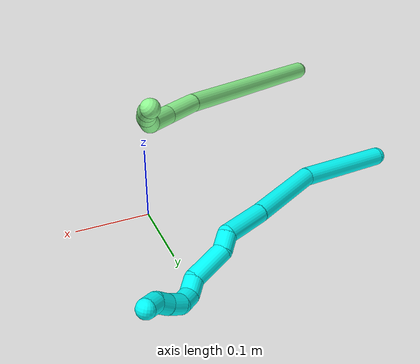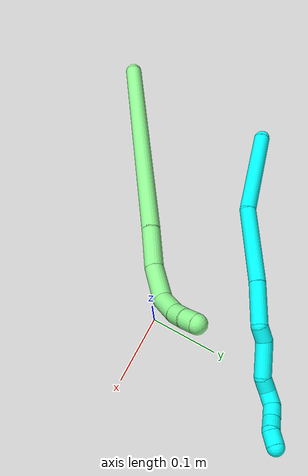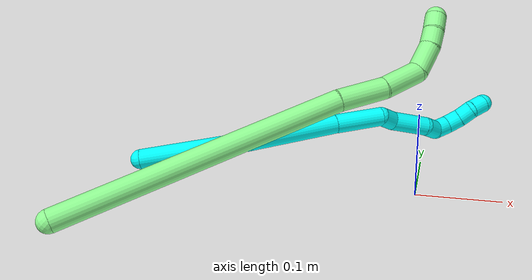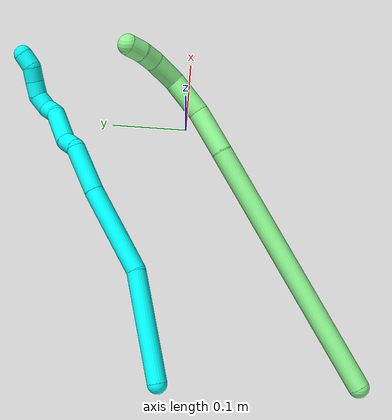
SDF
<sdf version="1.7">
 <world name="default">
  <model name="3">
   <static>0</static>
   <link name="3">
    <collision name="collision-cylinder-e_1_1_4">
     <pose>0.066704 0.017719 -0.013034 -2.20501 1.25226 -1.92094</pose>
     <geometry><cylinder><radius>0.0125</radius><length>0.140475</length></cylinder></geometry>
     <surface>
      <friction><ode><mu>1.16</mu><mu2>1.16</mu2><slip1>0</slip1><slip2>0</slip2></ode></friction>
      <contact><ode><kp>1e+06</kp><kd>1</kd><max_vel>0</max_vel><min_depth>0.001</min_depth></ode></contact>
     </surface>
    </collision>
    <visual name="visual-cylinder-e_1_1_4">
     <pose>0.066704 0.017719 -0.013034 -2.20501 1.25226 -1.92094</pose>
     <geometry><cylinder><radius>0.0125</radius><length>0.140475</length></cylinder></geometry>
     <material><ambient>0.003922 1 0.996078 1</ambient></material>
    </visual>
    <collision name="collision-cylinder-e_2_4_5">
     <pose>0.181167 0.065211 -0.042845 -2.08395 0.949702 -1.44305</pose>
     <geometry><cylinder><radius>0.0125</radius><length>0.117453</length></cylinder></geometry>
     <surface>
      <friction><ode><mu>1.16</mu><mu2>1.16</mu2><slip1>0</slip1><slip2>0</slip2></ode></friction>
      <contact><ode><kp>1e+06</kp><kd>1</kd><max_vel>0</max_vel><min_depth>0.001</min_depth></ode></contact>
     </surface>
    </collision>
    <visual name="visual-cylinder-e_2_4_5">
     <pose>0.181167 0.065211 -0.042845 -2.08395 0.949702 -1.44305</pose>
     <geometry><cylinder><radius>0.0125</radius><length>0.117453</length></cylinder></geometry>
     <material><ambient>0.003922 1 0.996078 1</ambient></material>
    </visual>
    <collision name="collision-cylinder-e_3_5_6">
     <pose>0.256368 0.109083 -0.068868 -2.15119 1.01984 -1.60566</pose>
     <geometry><cylinder><radius>0.0125</radius><length>0.064416</length></cylinder></geometry>
     <surface>
      <friction><ode><mu>1.16</mu><mu2>1.16</mu2><slip1>0</slip1><slip2>0</slip2></ode></friction>
      <contact><ode><kp>1e+06</kp><kd>1</kd><max_vel>0</max_vel><min_depth>0.001</min_depth></ode></contact>
     </surface>
    </collision>
    <visual name="visual-cylinder-e_3_5_6">
     <pose>0.256368 0.109083 -0.068868 -2.15119 1.01984 -1.60566</pose>
     <geometry><cylinder><radius>0.0125</radius><length>0.064416</length></cylinder></geometry>
     <material><ambient>0.003922 1 0.996078 1</ambient></material>
    </visual>
    <collision name="collision-cylinder-e_4_6_7">
     <pose>0.288375 0.129516 -0.086619 -2.5016 0.406531 -1.11284</pose>
     <geometry><cylinder><radius>0.0125</radius><length>0.02309</length></cylinder></geometry>
     <surface>
      <friction><ode><mu>1.16</mu><mu2>1.16</mu2><slip1>0</slip1><slip2>0</slip2></ode></friction>
      <contact><ode><kp>1e+06</kp><kd>1</kd><max_vel>0</max_vel><min_depth>0.001</min_depth></ode></contact>
     </surface>
    </collision>
    <visual name="visual-cylinder-e_4_6_7">
     <pose>0.288375 0.129516 -0.086619 -2.5016 0.406531 -1.11284</pose>
     <geometry><cylinder><radius>0.0125</radius><length>0.02309</length></cylinder></geometry>
     <material><ambient>0.003922 1 0.996078 1</ambient></material>
    </visual>
    <collision name="collision-cylinder-e_5_7_8">
     <pose>0.312362 0.143984 -0.109436 -2.62473 0.867688 -2.10457</pose>
     <geometry><cylinder><radius>0.0125</radius><length>0.05092</length></cylinder></geometry>
     <surface>
      <friction><ode><mu>1.16</mu><mu2>1.16</mu2><slip1>0</slip1><slip2>0</slip2></ode></friction>
      <contact><ode><kp>1e+06</kp><kd>1</kd><max_vel>0</max_vel><min_depth>0.001</min_depth></ode></contact>
     </surface>
    </collision>
    <visual name="visual-cylinder-e_5_7_8">
     <pose>0.312362 0.143984 -0.109436 -2.62473 0.867688 -2.10457</pose>
     <geometry><cylinder><radius>0.0125</radius><length>0.05092</length></cylinder></geometry>
     <material><ambient>0.003922 1 0.996078 1</ambient></material>
    </visual>
    <collision name="collision-cylinder-e_6_8_9">
     <pose>0.336128 0.158191 -0.13156 -2.48084 0.413672 -1.09819</pose>
     <geometry><cylinder><radius>0.0125</radius><length>0.021613</length></cylinder></geometry>
     <surface>
      <friction><ode><mu>1.16</mu><mu2>1.16</mu2><slip1>0</slip1><slip2>0</slip2></ode></friction>
      <contact><ode><kp>1e+06</kp><kd>1</kd><max_vel>0</max_vel><min_depth>0.001</min_depth></ode></contact>
     </surface>
    </collision>
    <visual name="visual-cylinder-e_6_8_9">
     <pose>0.336128 0.158191 -0.13156 -2.48084 0.413672 -1.09819</pose>
     <geometry><cylinder><radius>0.0125</radius><length>0.021613</length></cylinder></geometry>
     <material><ambient>0.003922 1 0.996078 1</ambient></material>
    </visual>
    <collision name="collision-cylinder-e_7_9_10">
     <pose>0.348028 0.171157 -0.141327 -1.84702 0.811951 -1.03408</pose>
     <geometry><cylinder><radius>0.0125</radius><length>0.020825</length></cylinder></geometry>
     <surface>
      <friction><ode><mu>1.16</mu><mu2>1.16</mu2><slip1>0</slip1><slip2>0</slip2></ode></friction>
      <contact><ode><kp>1e+06</kp><kd>1</kd><max_vel>0</max_vel><min_depth>0.001</min_depth></ode></contact>
     </surface>
    </collision>
    <visual name="visual-cylinder-e_7_9_10">
     <pose>0.348028 0.171157 -0.141327 -1.84702 0.811951 -1.03408</pose>
     <geometry><cylinder><radius>0.0125</radius><length>0.020825</length></cylinder></geometry>
     <material><ambient>0.003922 1 0.996078 1</ambient></material>
    </visual>
    <collision name="collision-cylinder-e_8_10_11">
     <pose>0.365252 0.181492 -0.141784 -1.16061 1.20054 -0.84368</pose>
     <geometry><cylinder><radius>0.0125</radius><length>0.020743</length></cylinder></geometry>
     <surface>
      <friction><ode><mu>1.16</mu><mu2>1.16</mu2><slip1>0</slip1><slip2>0</slip2></ode></friction>
      <contact><ode><kp>1e+06</kp><kd>1</kd><max_vel>0</max_vel><min_depth>0.001</min_depth></ode></contact>
     </surface>
    </collision>
    <visual name="visual-cylinder-e_8_10_11">
     <pose>0.365252 0.181492 -0.141784 -1.16061 1.20054 -0.84368</pose>
     <geometry><cylinder><radius>0.0125</radius><length>0.020743</length></cylinder></geometry>
     <material><ambient>0.003922 1 0.996078 1</ambient></material>
    </visual>
    <collision name="collision-cylinder-e_9_11_12">
     <pose>0.383976 0.187902 -0.137193 -0.764596 1.12858 -0.498409</pose>
     <geometry><cylinder><radius>0.0125</radius><length>0.020037</length></cylinder></geometry>
     <surface>
      <friction><ode><mu>1.16</mu><mu2>1.16</mu2><slip1>0</slip1><slip2>0</slip2></ode></friction>
      <contact><ode><kp>1e+06</kp><kd>1</kd><max_vel>0</max_vel><min_depth>0.001</min_depth></ode></contact>
     </surface>
    </collision>
    <visual name="visual-cylinder-e_9_11_12">
     <pose>0.383976 0.187902 -0.137193 -0.764596 1.12858 -0.498409</pose>
     <geometry><cylinder><radius>0.0125</radius><length>0.020037</length></cylinder></geometry>
     <material><ambient>0.003922 1 0.996078 1</ambient></material>
    </visual>
    <collision name="collision-cylinder-e_10_12_2">
     <pose>0.400868 0.197378 -0.134841 -1.68419 0.874564 -0.96489</pose>
     <geometry><cylinder><radius>0.0125</radius><length>0.020427</length></cylinder></geometry>
     <surface>
      <friction><ode><mu>1.16</mu><mu2>1.16</mu2><slip1>0</slip1><slip2>0</slip2></ode></friction>
      <contact><ode><kp>1e+06</kp><kd>1</kd><max_vel>0</max_vel><min_depth>0.001</min_depth></ode></contact>
     </surface>
    </collision>
    <visual name="visual-cylinder-e_10_12_2">
     <pose>0.400868 0.197378 -0.134841 -1.68419 0.874564 -0.96489</pose>
     <geometry><cylinder><radius>0.0125</radius><length>0.020427</length></cylinder></geometry>
     <material><ambient>0.003922 1 0.996078 1</ambient></material>
    </visual>
    <collision name="collision-sphere-2">
     <pose>0.408704 0.203886 -0.135582 0 -0 0</pose>
     <geometry><sphere><radius>0.0125</radius></sphere></geometry>
     <surface>
      <friction><ode><mu>1.16</mu><mu2>1.16</mu2><slip1>0</slip1><slip2>0</slip2></ode></friction>
      <contact><ode><kp>1e+06</kp><kd>1</kd><max_vel>0</max_vel><min_depth>0.001</min_depth></ode></contact>
     </surface>
    </collision>
    <visual name="visual-sphere-2">
     <pose>0.408704 0.203886 -0.135582 0 -0 0</pose>
     <geometry><sphere><radius>0.0125</radius></sphere></geometry>
     <material><ambient>0.003922 1 0.996078 1</ambient></material>
    </visual>
    <collision name="collision-sphere-12">
     <pose>0.393031 0.190869 -0.134099 0 -0 0</pose>
     <geometry><sphere><radius>0.0125</radius></sphere></geometry>
     <surface>
      <friction><ode><mu>1.16</mu><mu2>1.16</mu2><slip1>0</slip1><slip2>0</slip2></ode></friction>
      <contact><ode><kp>1e+06</kp><kd>1</kd><max_vel>0</max_vel><min_depth>0.001</min_depth></ode></contact>
     </surface>
    </collision>
    <visual name="visual-sphere-12">
     <pose>0.393031 0.190869 -0.134099 0 -0 0</pose>
     <geometry><sphere><radius>0.0125</radius></sphere></geometry>
     <material><ambient>0.003922 1 0.996078 1</ambient></material>
    </visual>
    <collision name="collision-sphere-11">
     <pose>0.374921 0.184934 -0.140287 0 -0 0</pose>
     <geometry><sphere><radius>0.0125</radius></sphere></geometry>
     <surface>
      <friction><ode><mu>1.16</mu><mu2>1.16</mu2><slip1>0</slip1><slip2>0</slip2></ode></friction>
      <contact><ode><kp>1e+06</kp><kd>1</kd><max_vel>0</max_vel><min_depth>0.001</min_depth></ode></contact>
     </surface>
    </collision>
    <visual name="visual-sphere-11">
     <pose>0.374921 0.184934 -0.140287 0 -0 0</pose>
     <geometry><sphere><radius>0.0125</radius></sphere></geometry>
     <material><ambient>0.003922 1 0.996078 1</ambient></material>
    </visual>
    <collision name="collision-sphere-10">
     <pose>0.355584 0.17805 -0.143281 0 -0 0</pose>
     <geometry><sphere><radius>0.0125</radius></sphere></geometry>
     <surface>
      <friction><ode><mu>1.16</mu><mu2>1.16</mu2><slip1>0</slip1><slip2>0</slip2></ode></friction>
      <contact><ode><kp>1e+06</kp><kd>1</kd><max_vel>0</max_vel><min_depth>0.001</min_depth></ode></contact>
     </surface>
    </collision>
    <visual name="visual-sphere-10">
     <pose>0.355584 0.17805 -0.143281 0 -0 0</pose>
     <geometry><sphere><radius>0.0125</radius></sphere></geometry>
     <material><ambient>0.003922 1 0.996078 1</ambient></material>
    </visual>
    <collision name="collision-sphere-9">
     <pose>0.340472 0.164264 -0.139373 0 -0 0</pose>
     <geometry><sphere><radius>0.0125</radius></sphere></geometry>
     <surface>
      <friction><ode><mu>1.16</mu><mu2>1.16</mu2><slip1>0</slip1><slip2>0</slip2></ode></friction>
      <contact><ode><kp>1e+06</kp><kd>1</kd><max_vel>0</max_vel><min_depth>0.001</min_depth></ode></contact>
     </surface>
    </collision>
    <visual name="visual-sphere-9">
     <pose>0.340472 0.164264 -0.139373 0 -0 0</pose>
     <geometry><sphere><radius>0.0125</radius></sphere></geometry>
     <material><ambient>0.003922 1 0.996078 1</ambient></material>
    </visual>
    <collision name="collision-sphere-4">
     <pose>0.133408 0.035438 -0.026068 0 -0 0</pose>
     <geometry><sphere><radius>0.0125</radius></sphere></geometry>
     <surface>
      <friction><ode><mu>1.16</mu><mu2>1.16</mu2><slip1>0</slip1><slip2>0</slip2></ode></friction>
      <contact><ode><kp>1e+06</kp><kd>1</kd><max_vel>0</max_vel><min_depth>0.001</min_depth></ode></contact>
     </surface>
    </collision>
    <visual name="visual-sphere-4">
     <pose>0.133408 0.035438 -0.026068 0 -0 0</pose>
     <geometry><sphere><radius>0.0125</radius></sphere></geometry>
     <material><ambient>0.003922 1 0.996078 1</ambient></material>
    </visual>
    <collision name="collision-sphere-1">
     <geometry><sphere><radius>0.0125</radius></sphere></geometry>
     <surface>
      <friction><ode><mu>1.16</mu><mu2>1.16</mu2><slip1>0</slip1><slip2>0</slip2></ode></friction>
      <contact><ode><kp>1e+06</kp><kd>1</kd><max_vel>0</max_vel><min_depth>0.001</min_depth></ode></contact>
     </surface>
    </collision>
    <visual name="visual-sphere-1">
     <geometry><sphere><radius>0.0125</radius></sphere></geometry>
     <material><ambient>0.003922 1 0.996078 1</ambient></material>
    </visual>
    <collision name="collision-sphere-8">
     <pose>0.331784 0.152119 -0.123748 0 -0 0</pose>
     <geometry><sphere><radius>0.0125</radius></sphere></geometry>
     <surface>
      <friction><ode><mu>1.16</mu><mu2>1.16</mu2><slip1>0</slip1><slip2>0</slip2></ode></friction>
      <contact><ode><kp>1e+06</kp><kd>1</kd><max_vel>0</max_vel><min_depth>0.001</min_depth></ode></contact>
     </surface>
    </collision>
    <visual name="visual-sphere-8">
     <pose>0.331784 0.152119 -0.123748 0 -0 0</pose>
     <geometry><sphere><radius>0.0125</radius></sphere></geometry>
     <material><ambient>0.003922 1 0.996078 1</ambient></material>
    </visual>
    <collision name="collision-sphere-5">
     <pose>0.228926 0.094983 -0.059622 0 -0 0</pose>
     <geometry><sphere><radius>0.0125</radius></sphere></geometry>
     <surface>
      <friction><ode><mu>1.16</mu><mu2>1.16</mu2><slip1>0</slip1><slip2>0</slip2></ode></friction>
      <contact><ode><kp>1e+06</kp><kd>1</kd><max_vel>0</max_vel><min_depth>0.001</min_depth></ode></contact>
     </surface>
    </collision>
    <visual name="visual-sphere-5">
     <pose>0.228926 0.094983 -0.059622 0 -0 0</pose>
     <geometry><sphere><radius>0.0125</radius></sphere></geometry>
     <material><ambient>0.003922 1 0.996078 1</ambient></material>
    </visual>
    <collision name="collision-sphere-6">
     <pose>0.28381 0.123183 -0.078114 0 -0 0</pose>
     <geometry><sphere><radius>0.0125</radius></sphere></geometry>
     <surface>
      <friction><ode><mu>1.16</mu><mu2>1.16</mu2><slip1>0</slip1><slip2>0</slip2></ode></friction>
      <contact><ode><kp>1e+06</kp><kd>1</kd><max_vel>0</max_vel><min_depth>0.001</min_depth></ode></contact>
     </surface>
    </collision>
    <visual name="visual-sphere-6">
     <pose>0.28381 0.123183 -0.078114 0 -0 0</pose>
     <geometry><sphere><radius>0.0125</radius></sphere></geometry>
     <material><ambient>0.003922 1 0.996078 1</ambient></material>
    </visual>
    <collision name="collision-sphere-7">
     <pose>0.292941 0.135849 -0.095125 0 -0 0</pose>
     <geometry><sphere><radius>0.0125</radius></sphere></geometry>
     <surface>
      <friction><ode><mu>1.16</mu><mu2>1.16</mu2><slip1>0</slip1><slip2>0</slip2></ode></friction>
      <contact><ode><kp>1e+06</kp><kd>1</kd><max_vel>0</max_vel><min_depth>0.001</min_depth></ode></contact>
     </surface>
    </collision>
    <visual name="visual-sphere-7">
     <pose>0.292941 0.135849 -0.095125 0 -0 0</pose>
     <geometry><sphere><radius>0.0125</radius></sphere></geometry>
     <material><ambient>0.003922 1 0.996078 1</ambient></material>
    </visual>
    <inertial>
     <pose>0.215397 0.092084 -0.066206 0 -0 0</pose>
     <mass>0.5</mass>
     <inertia>
      <ixx>-0.00016</ixx>
      <ixy>0</ixy>
      <ixz>0</ixz>
      <iyy>0.000179</iyy>
      <iyz>0</iyz>
      <izz>-0.000537</izz>
     </inertia>
    </inertial>
   </link>
   <pose>-0.346381 0.009985 0.012336 0.217265 -0.287261 -0.02693</pose>
  </model>
  <model name="13">
   <static>0</static>
   <link name="13">
    <collision name="collision-cylinder-e_1_1_4">
     <pose>0.037101 0.098698 -0.120312 -2.45457 0.234046 -0.635079</pose>
     <geometry><cylinder><radius>0.0125</radius><length>0.319955</length></cylinder></geometry>
     <surface>
      <friction><ode><mu>1.16</mu><mu2>1.16</mu2><slip1>0</slip1><slip2>0</slip2></ode></friction>
      <contact><ode><kp>1e+06</kp><kd>1</kd><max_vel>0</max_vel><min_depth>0.001</min_depth></ode></contact>
     </surface>
    </collision>
    <visual name="visual-cylinder-e_1_1_4">
     <pose>0.037101 0.098698 -0.120312 -2.45457 0.234046 -0.635079</pose>
     <geometry><cylinder><radius>0.0125</radius><length>0.319955</length></cylinder></geometry>
     <material><ambient>0.564706 0.984314 0.572549 1</ambient></material>
    </visual>
    <collision name="collision-cylinder-e_2_4_5">
     <pose>0.079337 0.217072 -0.259789 -2.34303 0.18482 -0.432405</pose>
     <geometry><cylinder><radius>0.0125</radius><length>0.055886</length></cylinder></geometry>
     <surface>
      <friction><ode><mu>1.16</mu><mu2>1.16</mu2><slip1>0</slip1><slip2>0</slip2></ode></friction>
      <contact><ode><kp>1e+06</kp><kd>1</kd><max_vel>0</max_vel><min_depth>0.001</min_depth></ode></contact>
     </surface>
    </collision>
    <visual name="visual-cylinder-e_2_4_5">
     <pose>0.079337 0.217072 -0.259789 -2.34303 0.18482 -0.432405</pose>
     <geometry><cylinder><radius>0.0125</radius><length>0.055886</length></cylinder></geometry>
     <material><ambient>0.564706 0.984314 0.572549 1</ambient></material>
    </visual>
    <collision name="collision-cylinder-e_3_5_6">
     <pose>0.092996 0.25156 -0.295567 -2.41342 0.365717 -0.903592</pose>
     <geometry><cylinder><radius>0.0125</radius><length>0.047667</length></cylinder></geometry>
     <surface>
      <friction><ode><mu>1.16</mu><mu2>1.16</mu2><slip1>0</slip1><slip2>0</slip2></ode></friction>
      <contact><ode><kp>1e+06</kp><kd>1</kd><max_vel>0</max_vel><min_depth>0.001</min_depth></ode></contact>
     </surface>
    </collision>
    <visual name="visual-cylinder-e_3_5_6">
     <pose>0.092996 0.25156 -0.295567 -2.41342 0.365717 -0.903592</pose>
     <geometry><cylinder><radius>0.0125</radius><length>0.047667</length></cylinder></geometry>
     <material><ambient>0.564706 0.984314 0.572549 1</ambient></material>
    </visual>
    <collision name="collision-cylinder-e_4_6_7">
     <pose>0.112726 0.268603 -0.325679 -2.97783 0.686293 -2.69005</pose>
     <geometry><cylinder><radius>0.0125</radius><length>0.035373</length></cylinder></geometry>
     <surface>
      <friction><ode><mu>1.16</mu><mu2>1.16</mu2><slip1>0</slip1><slip2>0</slip2></ode></friction>
      <contact><ode><kp>1e+06</kp><kd>1</kd><max_vel>0</max_vel><min_depth>0.001</min_depth></ode></contact>
     </surface>
    </collision>
    <visual name="visual-cylinder-e_4_6_7">
     <pose>0.112726 0.268603 -0.325679 -2.97783 0.686293 -2.69005</pose>
     <geometry><cylinder><radius>0.0125</radius><length>0.035373</length></cylinder></geometry>
     <material><ambient>0.564706 0.984314 0.572549 1</ambient></material>
    </visual>
    <collision name="collision-cylinder-e_5_7_8">
     <pose>0.131555 0.270511 -0.346286 3.09623 0.819664 3.03725</pose>
     <geometry><cylinder><radius>0.0125</radius><length>0.020852</length></cylinder></geometry>
     <surface>
      <friction><ode><mu>1.16</mu><mu2>1.16</mu2><slip1>0</slip1><slip2>0</slip2></ode></friction>
      <contact><ode><kp>1e+06</kp><kd>1</kd><max_vel>0</max_vel><min_depth>0.001</min_depth></ode></contact>
     </surface>
    </collision>
    <visual name="visual-cylinder-e_5_7_8">
     <pose>0.131555 0.270511 -0.346286 3.09623 0.819664 3.03725</pose>
     <geometry><cylinder><radius>0.0125</radius><length>0.020852</length></cylinder></geometry>
     <material><ambient>0.564706 0.984314 0.572549 1</ambient></material>
    </visual>
    <collision name="collision-cylinder-e_6_8_2">
     <pose>0.147488 0.270381 -0.359187 -3.10838 0.961955 -3.07796</pose>
     <geometry><cylinder><radius>0.0125</radius><length>0.020267</length></cylinder></geometry>
     <surface>
      <friction><ode><mu>1.16</mu><mu2>1.16</mu2><slip1>0</slip1><slip2>0</slip2></ode></friction>
      <contact><ode><kp>1e+06</kp><kd>1</kd><max_vel>0</max_vel><min_depth>0.001</min_depth></ode></contact>
     </surface>
    </collision>
    <visual name="visual-cylinder-e_6_8_2">
     <pose>0.147488 0.270381 -0.359187 -3.10838 0.961955 -3.07796</pose>
     <geometry><cylinder><radius>0.0125</radius><length>0.020267</length></cylinder></geometry>
     <material><ambient>0.564706 0.984314 0.572549 1</ambient></material>
    </visual>
    <collision name="collision-sphere-2">
     <pose>0.155801 0.270573 -0.364979 0 -0 0</pose>
     <geometry><sphere><radius>0.0125</radius></sphere></geometry>
     <surface>
      <friction><ode><mu>1.16</mu><mu2>1.16</mu2><slip1>0</slip1><slip2>0</slip2></ode></friction>
      <contact><ode><kp>1e+06</kp><kd>1</kd><max_vel>0</max_vel><min_depth>0.001</min_depth></ode></contact>
     </surface>
    </collision>
    <visual name="visual-sphere-2">
     <pose>0.155801 0.270573 -0.364979 0 -0 0</pose>
     <geometry><sphere><radius>0.0125</radius></sphere></geometry>
     <material><ambient>0.564706 0.984314 0.572549 1</ambient></material>
    </visual>
    <collision name="collision-sphere-4">
     <pose>0.074202 0.197396 -0.240625 0 -0 0</pose>
     <geometry><sphere><radius>0.0125</radius></sphere></geometry>
     <surface>
      <friction><ode><mu>1.16</mu><mu2>1.16</mu2><slip1>0</slip1><slip2>0</slip2></ode></friction>
      <contact><ode><kp>1e+06</kp><kd>1</kd><max_vel>0</max_vel><min_depth>0.001</min_depth></ode></contact>
     </surface>
    </collision>
    <visual name="visual-sphere-4">
     <pose>0.074202 0.197396 -0.240625 0 -0 0</pose>
     <geometry><sphere><radius>0.0125</radius></sphere></geometry>
     <material><ambient>0.564706 0.984314 0.572549 1</ambient></material>
    </visual>
    <collision name="collision-sphere-1">
     <geometry><sphere><radius>0.0125</radius></sphere></geometry>
     <surface>
      <friction><ode><mu>1.16</mu><mu2>1.16</mu2><slip1>0</slip1><slip2>0</slip2></ode></friction>
      <contact><ode><kp>1e+06</kp><kd>1</kd><max_vel>0</max_vel><min_depth>0.001</min_depth></ode></contact>
     </surface>
    </collision>
    <visual name="visual-sphere-1">
     <geometry><sphere><radius>0.0125</radius></sphere></geometry>
     <material><ambient>0.564706 0.984314 0.572549 1</ambient></material>
    </visual>
    <collision name="collision-sphere-8">
     <pose>0.139175 0.270188 -0.353394 0 -0 0</pose>
     <geometry><sphere><radius>0.0125</radius></sphere></geometry>
     <surface>
      <friction><ode><mu>1.16</mu><mu2>1.16</mu2><slip1>0</slip1><slip2>0</slip2></ode></friction>
      <contact><ode><kp>1e+06</kp><kd>1</kd><max_vel>0</max_vel><min_depth>0.001</min_depth></ode></contact>
     </surface>
    </collision>
    <visual name="visual-sphere-8">
     <pose>0.139175 0.270188 -0.353394 0 -0 0</pose>
     <geometry><sphere><radius>0.0125</radius></sphere></geometry>
     <material><ambient>0.564706 0.984314 0.572549 1</ambient></material>
    </visual>
    <collision name="collision-sphere-5">
     <pose>0.084472 0.236748 -0.278954 0 -0 0</pose>
     <geometry><sphere><radius>0.0125</radius></sphere></geometry>
     <surface>
      <friction><ode><mu>1.16</mu><mu2>1.16</mu2><slip1>0</slip1><slip2>0</slip2></ode></friction>
      <contact><ode><kp>1e+06</kp><kd>1</kd><max_vel>0</max_vel><min_depth>0.001</min_depth></ode></contact>
     </surface>
    </collision>
    <visual name="visual-sphere-5">
     <pose>0.084472 0.236748 -0.278954 0 -0 0</pose>
     <geometry><sphere><radius>0.0125</radius></sphere></geometry>
     <material><ambient>0.564706 0.984314 0.572549 1</ambient></material>
    </visual>
    <collision name="collision-sphere-6">
     <pose>0.101519 0.266372 -0.312179 0 -0 0</pose>
     <geometry><sphere><radius>0.0125</radius></sphere></geometry>
     <surface>
      <friction><ode><mu>1.16</mu><mu2>1.16</mu2><slip1>0</slip1><slip2>0</slip2></ode></friction>
      <contact><ode><kp>1e+06</kp><kd>1</kd><max_vel>0</max_vel><min_depth>0.001</min_depth></ode></contact>
     </surface>
    </collision>
    <visual name="visual-sphere-6">
     <pose>0.101519 0.266372 -0.312179 0 -0 0</pose>
     <geometry><sphere><radius>0.0125</radius></sphere></geometry>
     <material><ambient>0.564706 0.984314 0.572549 1</ambient></material>
    </visual>
    <collision name="collision-sphere-7">
     <pose>0.123934 0.270834 -0.339178 0 -0 0</pose>
     <geometry><sphere><radius>0.0125</radius></sphere></geometry>
     <surface>
      <friction><ode><mu>1.16</mu><mu2>1.16</mu2><slip1>0</slip1><slip2>0</slip2></ode></friction>
      <contact><ode><kp>1e+06</kp><kd>1</kd><max_vel>0</max_vel><min_depth>0.001</min_depth></ode></contact>
     </surface>
    </collision>
    <visual name="visual-sphere-7">
     <pose>0.123934 0.270834 -0.339178 0 -0 0</pose>
     <geometry><sphere><radius>0.0125</radius></sphere></geometry>
     <material><ambient>0.564706 0.984314 0.572549 1</ambient></material>
    </visual>
    <inertial>
     <pose>0.060914 0.152646 -0.186245 0 -0 0</pose>
     <mass>0.5</mass>
     <inertia>
      <ixx>0.000576</ixx>
      <ixy>0</ixy>
      <ixz>0</ixz>
      <iyy>-0.00305</iyy>
      <iyz>0</iyz>
      <izz>-0.002388</izz>
     </inertia>
    </inertial>
   </link>
   <pose>-0.337851 -0.227341 0.046094 -2.46357 -0.268514 2.00728</pose>
  </model>
 </world>
</sdf>
